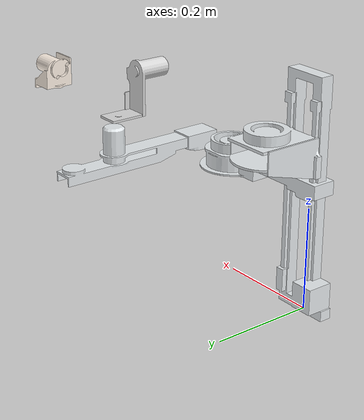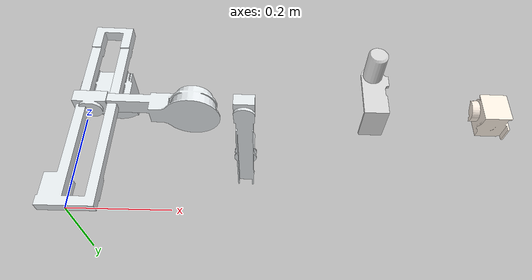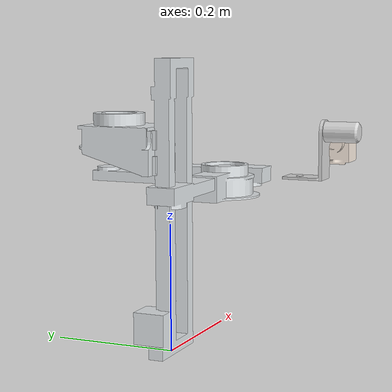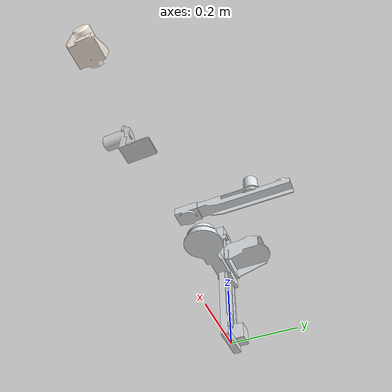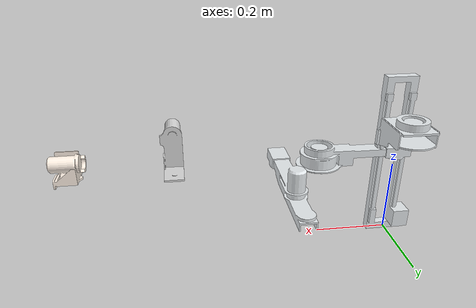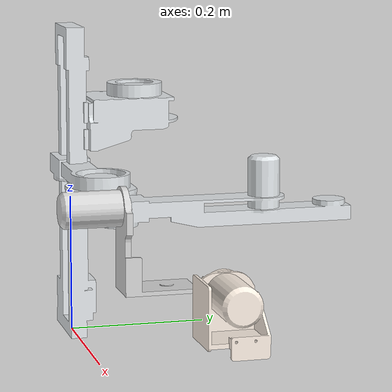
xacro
<?xml version="1.0"?>
<robot xmlns:xacro="http://www.ros.org/wiki/xacro" name="scara_description">
    <xacro:arg name="initial_positions_file" default="initial_positions.yaml" />

    <!-- Import scara_description urdf file -->
    <xacro:include filename="$(find scara_description)/urdf/mushroom_bot3_urdf.urdf" />

    <!-- Import control_xacro -->
    <xacro:include filename="scara_description.ros2_control.xacro" />

    <xacro:scara_description_ros2_control name="FakeSystem" initial_positions_file="$(arg initial_positions_file)"/>

</robot>

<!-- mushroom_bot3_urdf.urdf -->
<robot
	name="scara_description">
	  <link name="world"/>
 <joint name="base_joint" type="fixed">
 	<origin xyz="0 0.0 0.0" rpy="0.0 0.0 0.0" />
    <parent link="world"/>
    <child link="base_link"/>
  </joint>

  <link
    name="base_link">
    <inertial>
      <origin
        xyz="-0.15609 -0.0016863 0.25062"
        rpy="0 0 0" />
      <mass
        value="14.052" />
      <inertia
        ixx="0.56351"
        ixy="0.00030413"
        ixz="0.017757"
        iyy="0.56374"
        iyz="-0.0012972"
        izz="0.066772" />
    </inertial>
    <visual>
      <origin
        xyz="0 0 0"
        rpy="0 0 0" />
      <geometry>
        <mesh
          filename="package://scara_description/meshes/base_link.STL" />
      </geometry>
      <material
        name="">
        <color
          rgba="0.89804 0.91765 0.92941 1" />
      </material>
    </visual>
    <collision>
      <origin
        xyz="0 0 0"
        rpy="0 0 0" />
      <geometry>
        <mesh
          filename="package://scara_description/meshes/base_link.STL" />
      </geometry>
    </collision>
  </link>
  <link
    name="link1">
    <inertial>
      <origin
        xyz="-0.056359 2.3516E-10 0.15547"
        rpy="0 0 0" />
      <mass
        value="1.2027" />
      <inertia
        ixx="0.001609"
        ixy="1.8058E-11"
        ixz="0.00018904"
        iyy="0.0057321"
        iyz="6.1535E-12"
        izz="0.0067457" />
    </inertial>
    <visual>
      <origin
        xyz="0 0 0"
        rpy="0 0 0" />
      <geometry>
        <mesh
          filename="package://scara_description/meshes/Link1.STL" />
      </geometry>
      <material
        name="">
        <color
          rgba="0.89804 0.91765 0.92941 1" />
      </material>
    </visual>
    <collision>
      <origin
        xyz="0 0 0"
        rpy="0 0 0" />
      <geometry>
        <mesh
          filename="package://scara_description/meshes/Link1.STL" />
      </geometry>
    </collision>
  </link>
  <joint
    name="joint1"
    type="prismatic">
    <origin
      xyz="0 0 0.20686"
      rpy="0 0 0" />
    <parent
      link="base_link" />
    <child
      link="link1" />
    <axis
      xyz="0 0 -1" />
    <limit
      lower="-0.15"
      upper="0.3"
      effort="20"
      velocity="1.0" />
  </joint>
  <link
    name="link2">
    <inertial>
      <origin
        xyz="0.22558 8.8601E-07 0.034559"
        rpy="0 0 0" />
      <mass
        value="1.3921" />
      <inertia
        ixx="0.0023969"
        ixy="1.4147E-07"
        ixz="-8.7167E-05"
        iyy="0.020922"
        iyz="6.8204E-09"
        izz="0.022324" />
    </inertial>
    <visual>
      <origin
        xyz="0 0 0"
        rpy="0 0 0" />
      <geometry>
        <mesh
          filename="package://scara_description/meshes/Link2.STL" />
      </geometry>
      <material
        name="">
        <color
          rgba="0.89804 0.91765 0.92941 1" />
      </material>
    </visual>
    <collision>
      <origin
        xyz="0 0 0"
        rpy="0 0 0" />
      <geometry>
        <mesh
          filename="package://scara_description/meshes/Link2.STL" />
      </geometry>
    </collision>
  </link>
  <joint
    name="joint2"
    type="revolute">
    <origin
      xyz="0 0 0"
      rpy="0 0 0" />
    <parent
      link="link1" />
    <child
      link="link2" />
    <axis
      xyz="0 0 1" />
    <limit
      lower="-2.87"
      upper="2.87"
      effort="20"
      velocity="1.0" />
  </joint>
  <link
    name="link3">
    <inertial>
      <origin
        xyz="0.15992 -0.003251 0.031489"
        rpy="0 0 0" />
      <mass
        value="0.82346" />
      <inertia
        ixx="0.00097691"
        ixy="0.00011852"
        ixz="-5.1942E-07"
        iyy="0.006861"
        iyz="7.7427E-08"
        izz="0.0077311" />
    </inertial>
    <visual>
      <origin
        xyz="0 0 0"
        rpy="0 0 0" />
      <geometry>
        <mesh
          filename="package://scara_description/meshes/Link3.STL" />
      </geometry>
      <material
        name="">
        <color
          rgba="0.89804 0.91765 0.92941 1" />
      </material>
    </visual>
    <collision>
      <origin
        xyz="0 0 0"
        rpy="0 0 0" />
      <geometry>
        <mesh
          filename="package://scara_description/meshes/Link3.STL" />
      </geometry>
    </collision>
  </link>
  <joint
    name="joint3"
    type="revolute">
    <origin
      xyz="0.325 0 0"
      rpy="0 0 0" />
    <parent
      link="link2" />
    <child
      link="link3" />
    <axis
      xyz="0 0 1" />
    <limit
      lower="-3.1415"
      upper="3.1415"
      effort="20"
      velocity="1.0" />
  </joint>
  <link
    name="link4">
    <inertial>
      <origin
        xyz="0.081298 -3.1739E-13 0.0031854"
        rpy="0 0 0" />
      <mass
        value="0.26408" />
      <inertia
        ixx="0.00013535"
        ixy="1.0514E-15"
        ixz="-6.7538E-06"
        iyy="0.0010714"
        iyz="2.6377E-17"
        izz="0.0012047" />
    </inertial>
    <visual>
      <origin
        xyz="0 0 0"
        rpy="0 0 0" />
      <geometry>
        <mesh
          filename="package://scara_description/meshes/Link4.STL" />
      </geometry>
      <material
        name="">
        <color
          rgba="0.84706 0.84706 0.84706 1" />
      </material>
    </visual>
    <collision>
      <origin
        xyz="0 0 0"
        rpy="0 0 0" />
      <geometry>
        <mesh
          filename="package://scara_description/meshes/Link4.STL" />
      </geometry>
    </collision>
  </link>
  <joint
    name="joint4"
    type="revolute">
    <origin
      xyz="0.27494 -0.0055 0"
      rpy="0 0 0" />
    <parent
      link="link3" />
    <child
      link="link4" />
    <axis
      xyz="0 0 -1" />
    <limit
      lower="-1.57"
      upper="1.57"
      effort="20"
      velocity="1.0" />
  </joint>
  <link
    name="link5">
    <inertial>
      <origin
        xyz="-1.1102E-16 5.0307E-17 0.002"
        rpy="0 0 0" />
      <mass
        value="0.0037324" />
      <inertia
        ixx="5.9097E-08"
        ixy="3.9728E-36"
        ixz="-7.5499E-24"
        iyy="5.9097E-08"
        iyz="-1.1452E-24"
        izz="5.5988E-08" />
    </inertial>
    <visual>
      <origin
        xyz="0 0 0"
        rpy="0 0 0" />
      <geometry>
        <mesh
          filename="package://scara_description/meshes/Link5.STL" />
      </geometry>
      <material
        name="">
        <color
          rgba="1 0.94902 0.89804 1" />
      </material>
    </visual>
    <collision>
      <origin
        xyz="0 0 0"
        rpy="0 0 0" />
      <geometry>
        <mesh
          filename="package://scara_description/meshes/Link5.STL" />
      </geometry>
    </collision>
  </link>
  <joint
    name="joint5"
    type="fixed">
    <origin
      xyz="0.262158865969243 0 0"
      rpy="0 0 0" />
    <parent
      link="link4" />
    <child
      link="link5" />
    <axis
      xyz="0 0 0" />
  </joint>

</robot>
